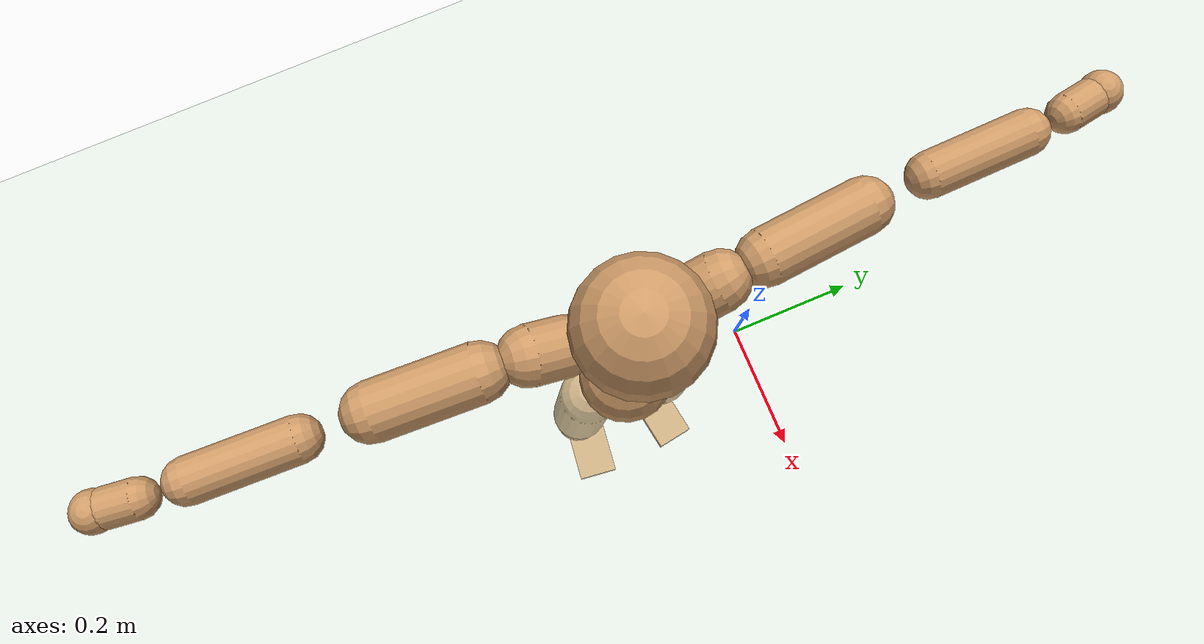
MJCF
<mujoco model="humanoid">
  <compiler coordinate="local"/>
  <default>
    <joint damping="0.0" armature="0.01" stiffness="0.0" limited="true"/>
    <geom conaffinity="1" condim="3" contype="7" margin="0.001" rgba="0.8 0.6 .4 1"/>
  </default>
  <asset>
    <texture type="skybox" builtin="gradient" rgb1=".4 .5 .6" rgb2="0 0 0" width="100" height="100"/>
    <texture builtin="flat" height="1278" mark="cross" markrgb="1 1 1" name="texgeom" random="0.01" rgb1="0.8 0.6 0.4" rgb2="0.8 0.6 0.4" type="cube" width="127"/>
    <texture builtin="checker" height="100" name="texplane" rgb1="0 0 0" rgb2="0.8 0.8 0.8" type="2d" width="100"/>
    <material name="MatPlane" reflectance="0.5" shininess="1" specular="1" texrepeat="60 60" texture="texplane"/>
    <material name="geom" texture="texgeom" texuniform="true"/>
  </asset>
  <worldbody>
    <light cutoff="100" diffuse="1 1 1" dir="-0 0 -1.3" directional="true" exponent="1" pos="0 0 1.3" specular=".1 .1 .1"/>
    <geom conaffinity="1" condim="3" name="floor" pos="0 0 0" rgba="0.8 0.9 0.8 1" size="100 100 .2" type="plane" material="MatPlane"/>
    <body name="Pelvis" pos="-0.0023 -0.1964 0.013">
      <freejoint name="Pelvis"/>
      <geom type="sphere" contype="1" conaffinity="1" density="500" size="0.0773" pos="0.0000 0.0000 0.0000" name="Pelvis"/>
      <body name="L_Hip" pos="-0.0163 0.0594 -0.0849">
        <joint name="L_Hip_x" type="hinge" pos="0 0 0" axis="1 0 0" stiffness="800" damping="80" armature="0.02" range="-180.0000 180.0000"/>
        <joint name="L_Hip_y" type="hinge" pos="0 0 0" axis="0 1 0" stiffness="800" damping="80" armature="0.02" range="-180.0000 180.0000"/>
        <joint name="L_Hip_z" type="hinge" pos="0 0 0" axis="0 0 1" stiffness="800" damping="80" armature="0.02" range="-180.0000 180.0000"/>
        <geom type="capsule" contype="1" conaffinity="1" density="500" fromto="0.0005 0.0072 -0.0738 0.0019 0.0289 -0.2953" size="0.052" name="L_Hip"/>
        <body name="L_Knee" pos="0.0024 0.0361 -0.3692">
          <joint name="L_Knee_x" type="hinge" pos="0 0 0" axis="1 0 0" stiffness="800" damping="80" armature="0.02" range="-180.0000 180.0000"/>
          <joint name="L_Knee_y" type="hinge" pos="0 0 0" axis="0 1 0" stiffness="800" damping="80" armature="0.02" range="-180.0000 180.0000"/>
          <joint name="L_Knee_z" type="hinge" pos="0 0 0" axis="0 0 1" stiffness="800" damping="80" armature="0.02" range="-180.0000 180.0000"/>
          <geom type="capsule" contype="1" conaffinity="1" density="500" fromto="-0.0076 -0.0025 -0.0771 -0.0303 -0.0101 -0.3086" size="0.0463" name="L_Knee"/>
          <body name="L_Ankle" pos="-0.0378 -0.0126 -0.3857">
            <joint name="L_Ankle_x" type="hinge" pos="0 0 0" axis="1 0 0" stiffness="800" damping="80" armature="0.02" range="-180.0000 180.0000"/>
            <joint name="L_Ankle_y" type="hinge" pos="0 0 0" axis="0 1 0" stiffness="800" damping="80" armature="0.02" range="-180.0000 180.0000"/>
            <joint name="L_Ankle_z" type="hinge" pos="0 0 0" axis="0 0 1" stiffness="800" damping="80" armature="0.02" range="-180.0000 180.0000"/>
            <geom type="box" contype="1" conaffinity="1" density="500" pos="0.0560 0.0086 -0.0265" size="0.0787 0.04 0.0191" quat="0.9971 0.0000 0.0000 0.0763" name="L_Ankle"/>
            <body name="L_Toe" pos="0.1119 0.0172 -0.0529">
              <joint name="L_Toe_x" type="hinge" pos="0 0 0" axis="1 0 0" stiffness="500" damping="50" armature="0.02" range="-180.0000 180.0000"/>
              <joint name="L_Toe_y" type="hinge" pos="0 0 0" axis="0 1 0" stiffness="500" damping="50" armature="0.02" range="-180.0000 180.0000"/>
              <joint name="L_Toe_z" type="hinge" pos="0 0 0" axis="0 0 1" stiffness="500" damping="50" armature="0.02" range="-180.0000 180.0000"/>
              <geom type="box" contype="1" conaffinity="1" density="500" pos="0.0000 0.0000 0.0260" size="0.0008 0.002 0.0009" quat="0.9965 0.0000 0.0000 0.0835" name="L_Toe"/>
            </body>
          </body>
        </body>
      </body>
      <body name="R_Hip" pos="-0.0122 -0.0576 -0.0837">
        <joint name="R_Hip_x" type="hinge" pos="0 0 0" axis="1 0 0" stiffness="800" damping="80" armature="0.02" range="-180.0000 180.0000"/>
        <joint name="R_Hip_y" type="hinge" pos="0 0 0" axis="0 1 0" stiffness="800" damping="80" armature="0.02" range="-180.0000 180.0000"/>
        <joint name="R_Hip_z" type="hinge" pos="0 0 0" axis="0 0 1" stiffness="800" damping="80" armature="0.02" range="-180.0000 180.0000"/>
        <geom type="capsule" contype="1" conaffinity="1" density="500" fromto="-0.0001 -0.0081 -0.0754 -0.0005 -0.0323 -0.3017" size="0.0512" name="R_Hip"/>
        <body name="R_Knee" pos="-0.0006 -0.0404 -0.3771">
          <joint name="R_Knee_x" type="hinge" pos="0 0 0" axis="1 0 0" stiffness="800" damping="80" armature="0.02" range="-180.0000 180.0000"/>
          <joint name="R_Knee_y" type="hinge" pos="0 0 0" axis="0 1 0" stiffness="800" damping="80" armature="0.02" range="-180.0000 180.0000"/>
          <joint name="R_Knee_z" type="hinge" pos="0 0 0" axis="0 0 1" stiffness="800" damping="80" armature="0.02" range="-180.0000 180.0000"/>
          <geom type="capsule" contype="1" conaffinity="1" density="500" fromto="-0.0069 0.0032 -0.0769 -0.0278 0.0127 -0.3076" size="0.0467" name="R_Knee"/>
          <body name="R_Ankle" pos="-0.0347 0.0159 -0.3845">
            <joint name="R_Ankle_x" type="hinge" pos="0 0 0" axis="1 0 0" stiffness="800" damping="80" armature="0.02" range="-180.0000 180.0000"/>
            <joint name="R_Ankle_y" type="hinge" pos="0 0 0" axis="0 1 0" stiffness="800" damping="80" armature="0.02" range="-180.0000 180.0000"/>
            <joint name="R_Ankle_z" type="hinge" pos="0 0 0" axis="0 0 1" stiffness="800" damping="80" armature="0.02" range="-180.0000 180.0000"/>
            <geom type="box" contype="1" conaffinity="1" density="500" pos="0.0572 -0.0072 -0.0226" size="0.0805 0.0425 0.0183" quat="0.9981 0.0000 0.0000 -0.0622" name="R_Ankle"/>
            <body name="R_Toe" pos="0.1144 -0.0143 -0.0453">
              <joint name="R_Toe_x" type="hinge" pos="0 0 0" axis="1 0 0" stiffness="500" damping="50" armature="0.02" range="-180.0000 180.0000"/>
              <joint name="R_Toe_y" type="hinge" pos="0 0 0" axis="0 1 0" stiffness="500" damping="50" armature="0.02" range="-180.0000 180.0000"/>
              <joint name="R_Toe_z" type="hinge" pos="0 0 0" axis="0 0 1" stiffness="500" damping="50" armature="0.02" range="-180.0000 180.0000"/>
              <geom type="box" contype="1" conaffinity="1" density="500" pos="0.0000 0.0000 0.0244" size="0.0008 0.0021 0.001" quat="0.9986 0.0000 0.0000 -0.0527" name="R_Toe"/>
            </body>
          </body>
        </body>
      </body>
      <body name="Torso" pos="-0.0095 -0.0024 0.0968">
        <joint name="Torso_x" type="hinge" pos="0 0 0" axis="1 0 0" stiffness="1000" damping="100" armature="0.02" range="-180.0000 180.0000"/>
        <joint name="Torso_y" type="hinge" pos="0 0 0" axis="0 1 0" stiffness="1000" damping="100" armature="0.02" range="-180.0000 180.0000"/>
        <joint name="Torso_z" type="hinge" pos="0 0 0" axis="0 0 1" stiffness="1000" damping="100" armature="0.02" range="-180.0000 180.0000"/>
        <geom type="capsule" contype="1" conaffinity="1" density="500" fromto="0.0024 0.0023 0.0790 0.0016 0.0015 0.0527" size="0.051987" name="Torso"/>
        <body name="Spine" pos="0.0041 0.0039 0.1317">
          <joint name="Spine_x" type="hinge" pos="0 0 0" axis="1 0 0" stiffness="1000" damping="100" armature="0.02" range="-180.0000 180.0000"/>
          <joint name="Spine_y" type="hinge" pos="0 0 0" axis="0 1 0" stiffness="1000" damping="100" armature="0.02" range="-180.0000 180.0000"/>
          <joint name="Spine_z" type="hinge" pos="0 0 0" axis="0 0 1" stiffness="1000" damping="100" armature="0.02" range="-180.0000 180.0000"/>
          <geom type="capsule" contype="1" conaffinity="1" density="500" fromto="0.0125 0.0017 0.0276 0.0083 0.0011 0.0184" size="0.053196" name="Spine"/>
          <body name="Chest" pos="0.0208 0.0029 0.0461">
            <joint name="Chest_x" type="hinge" pos="0 0 0" axis="1 0 0" stiffness="1000" damping="100" armature="0.02" range="-180.0000 180.0000"/>
            <joint name="Chest_y" type="hinge" pos="0 0 0" axis="0 1 0" stiffness="1000" damping="100" armature="0.02" range="-180.0000 180.0000"/>
            <joint name="Chest_z" type="hinge" pos="0 0 0" axis="0 0 1" stiffness="1000" damping="100" armature="0.02" range="-180.0000 180.0000"/>
            <geom type="capsule" contype="1" conaffinity="1" density="500" fromto="-0.0215 -0.0011 0.0804 -0.0143 -0.0007 0.0536" size="0.073377" name="Chest"/>
            <body name="Neck" pos="-0.0432 -0.0033 0.1897">
              <joint name="Neck_x" type="hinge" pos="0 0 0" axis="1 0 0" stiffness="500" damping="50" armature="0.02" range="-180.0000 180.0000"/>
              <joint name="Neck_y" type="hinge" pos="0 0 0" axis="0 1 0" stiffness="500" damping="50" armature="0.02" range="-180.0000 180.0000"/>
              <joint name="Neck_z" type="hinge" pos="0 0 0" axis="0 0 1" stiffness="500" damping="50" armature="0.02" range="-180.0000 180.0000"/>
              <geom type="capsule" contype="1" conaffinity="1" density="500" fromto="0.0090 0.0012 0.0120 0.0360 0.0048 0.0480" size="0.034038" name="Neck"/>
              <body name="Head" pos="0.045 0.006 0.06">
                <joint name="Head_x" type="hinge" pos="0 0 0" axis="1 0 0" stiffness="500" damping="50" armature="0.02" range="-180.0000 180.0000"/>
                <joint name="Head_y" type="hinge" pos="0 0 0" axis="0 1 0" stiffness="500" damping="50" armature="0.02" range="-180.0000 180.0000"/>
                <joint name="Head_z" type="hinge" pos="0 0 0" axis="0 0 1" stiffness="500" damping="50" armature="0.02" range="-180.0000 180.0000"/>
                <geom type="sphere" contype="1" conaffinity="1" density="500" size="0.0895" pos="0.0000 0.0000 0.0000" name="Head"/>
              </body>
            </body>
            <body name="L_Thorax" pos="-0.0303 0.0675 0.1073">
              <joint name="L_Thorax_x" type="hinge" pos="0 0 0" axis="1 0 0" stiffness="500" damping="50" armature="0.02" range="-180.0000 180.0000"/>
              <joint name="L_Thorax_y" type="hinge" pos="0 0 0" axis="0 1 0" stiffness="500" damping="50" armature="0.02" range="-180.0000 180.0000"/>
              <joint name="L_Thorax_z" type="hinge" pos="0 0 0" axis="0 0 1" stiffness="500" damping="50" armature="0.02" range="-180.0000 180.0000"/>
              <geom type="capsule" contype="1" conaffinity="1" density="500" fromto="-0.0006 0.0157 0.0061 -0.0022 0.0628 0.0245" size="0.0427" name="L_Thorax"/>
              <body name="L_Shoulder" pos="-0.0028 0.0785 0.0306">
                <joint name="L_Shoulder_x" type="hinge" pos="0 0 0" axis="1 0 0" stiffness="500" damping="50" armature="0.02" range="-720.0000 720.0000"/>
                <joint name="L_Shoulder_y" type="hinge" pos="0 0 0" axis="0 1 0" stiffness="500" damping="50" armature="0.02" range="-720.0000 720.0000"/>
                <joint name="L_Shoulder_z" type="hinge" pos="0 0 0" axis="0 0 1" stiffness="500" damping="50" armature="0.02" range="-720.0000 720.0000"/>
                <geom type="capsule" contype="1" conaffinity="1" density="500" fromto="-0.0046 0.0500 -0.0027 -0.0183 0.1999 -0.0107" size="0.04" name="L_Shoulder"/>
                <body name="L_Elbow" pos="-0.0228 0.2499 -0.0134">
                  <joint name="L_Elbow_x" type="hinge" pos="0 0 0" axis="1 0 0" stiffness="500" damping="50" armature="0.02" range="-720.0000 720.0000"/>
                  <joint name="L_Elbow_y" type="hinge" pos="0 0 0" axis="0 1 0" stiffness="500" damping="50" armature="0.02" range="-720.0000 720.0000"/>
                  <joint name="L_Elbow_z" type="hinge" pos="0 0 0" axis="0 0 1" stiffness="500" damping="50" armature="0.02" range="-720.0000 720.0000"/>
                  <geom type="capsule" contype="1" conaffinity="1" density="500" fromto="-0.0005 0.0471 0.0017 -0.0021 0.1883 0.0066" size="0.0325" name="L_Elbow"/>
                  <body name="L_Wrist" pos="-0.0026 0.2353 0.0083">
                    <joint name="L_Wrist_x" type="hinge" pos="0 0 0" axis="1 0 0" stiffness="300" damping="30" armature="0.02" range="-180.0000 180.0000"/>
                    <joint name="L_Wrist_y" type="hinge" pos="0 0 0" axis="0 1 0" stiffness="300" damping="30" armature="0.02" range="-180.0000 180.0000"/>
                    <joint name="L_Wrist_z" type="hinge" pos="0 0 0" axis="0 0 1" stiffness="300" damping="30" armature="0.02" range="-180.0000 180.0000"/>
                    <geom type="capsule" contype="1" conaffinity="1" density="500" fromto="-0.0025 0.0148 -0.0018 -0.0101 0.0591 -0.0074" size="0.0273" name="L_Wrist"/>
                    <body name="L_Hand" pos="-0.0126 0.0739 -0.0092">
                      <joint name="L_Hand_x" type="hinge" pos="0 0 0" axis="1 0 0" stiffness="300" damping="30" armature="0.02" range="-180.0000 180.0000"/>
                      <joint name="L_Hand_y" type="hinge" pos="0 0 0" axis="0 1 0" stiffness="300" damping="30" armature="0.02" range="-180.0000 180.0000"/>
                      <joint name="L_Hand_z" type="hinge" pos="0 0 0" axis="0 0 1" stiffness="300" damping="30" armature="0.02" range="-180.0000 180.0000"/>
                      <geom type="sphere" contype="1" conaffinity="1" density="500" size="0.0297" pos="0.0000 0.0000 0.0000" name="L_Hand"/>
                    </body>
                  </body>
                </body>
              </body>
            </body>
            <body name="R_Thorax" pos="-0.0338 -0.0695 0.1051">
              <joint name="R_Thorax_x" type="hinge" pos="0 0 0" axis="1 0 0" stiffness="500" damping="50" armature="0.02" range="-180.0000 180.0000"/>
              <joint name="R_Thorax_y" type="hinge" pos="0 0 0" axis="0 1 0" stiffness="500" damping="50" armature="0.02" range="-180.0000 180.0000"/>
              <joint name="R_Thorax_z" type="hinge" pos="0 0 0" axis="0 0 1" stiffness="500" damping="50" armature="0.02" range="-180.0000 180.0000"/>
              <geom type="capsule" contype="1" conaffinity="1" density="500" fromto="-0.0014 -0.0165 0.0064 -0.0055 -0.0661 0.0256" size="0.0417" name="R_Thorax"/>
              <body name="R_Shoulder" pos="-0.0068 -0.0826 0.032">
                <joint name="R_Shoulder_x" type="hinge" pos="0 0 0" axis="1 0 0" stiffness="500" damping="50" armature="0.02" range="-720.0000 720.0000"/>
                <joint name="R_Shoulder_y" type="hinge" pos="0 0 0" axis="0 1 0" stiffness="500" damping="50" armature="0.02" range="-720.0000 720.0000"/>
                <joint name="R_Shoulder_z" type="hinge" pos="0 0 0" axis="0 0 1" stiffness="500" damping="50" armature="0.02" range="-720.0000 720.0000"/>
                <geom type="capsule" contype="1" conaffinity="1" density="500" fromto="-0.0026 -0.0484 -0.0027 -0.0106 -0.1936 -0.0107" size="0.0417" name="R_Shoulder"/>
                <body name="R_Elbow" pos="-0.0132 -0.242 -0.0133">
                  <joint name="R_Elbow_x" type="hinge" pos="0 0 0" axis="1 0 0" stiffness="500" damping="50" armature="0.02" range="-720.0000 720.0000"/>
                  <joint name="R_Elbow_y" type="hinge" pos="0 0 0" axis="0 1 0" stiffness="500" damping="50" armature="0.02" range="-720.0000 720.0000"/>
                  <joint name="R_Elbow_z" type="hinge" pos="0 0 0" axis="0 0 1" stiffness="500" damping="50" armature="0.02" range="-720.0000 720.0000"/>
                  <geom type="capsule" contype="1" conaffinity="1" density="500" fromto="-0.0016 -0.0487 0.0011 -0.0065 -0.1947 0.0046" size="0.0326" name="R_Elbow"/>
                  <body name="R_Wrist" pos="-0.0081 -0.2433 0.0057">
                    <joint name="R_Wrist_x" type="hinge" pos="0 0 0" axis="1 0 0" stiffness="300" damping="30" armature="0.02" range="-180.0000 180.0000"/>
                    <joint name="R_Wrist_y" type="hinge" pos="0 0 0" axis="0 1 0" stiffness="300" damping="30" armature="0.02" range="-180.0000 180.0000"/>
                    <joint name="R_Wrist_z" type="hinge" pos="0 0 0" axis="0 0 1" stiffness="300" damping="30" armature="0.02" range="-180.0000 180.0000"/>
                    <geom type="capsule" contype="1" conaffinity="1" density="500" fromto="-0.0019 -0.0150 -0.0013 -0.0077 -0.0598 -0.0054" size="0.028" name="R_Wrist"/>
                    <body name="R_Hand" pos="-0.0096 -0.0748 -0.0067">
                      <joint name="R_Hand_x" type="hinge" pos="0 0 0" axis="1 0 0" stiffness="300" damping="30" armature="0.02" range="-180.0000 180.0000"/>
                      <joint name="R_Hand_y" type="hinge" pos="0 0 0" axis="0 1 0" stiffness="300" damping="30" armature="0.02" range="-180.0000 180.0000"/>
                      <joint name="R_Hand_z" type="hinge" pos="0 0 0" axis="0 0 1" stiffness="300" damping="30" armature="0.02" range="-180.0000 180.0000"/>
                      <geom type="sphere" contype="1" conaffinity="1" density="500" size="0.0299" pos="0.0000 0.0000 0.0000" name="R_Hand"/>
                    </body>
                  </body>
                </body>
              </body>
            </body>
          </body>
        </body>
      </body>
    </body>
  </worldbody>
  <actuator>
    <motor name="L_Hip_x" joint="L_Hip_x" gear="500"/>
    <motor name="L_Hip_y" joint="L_Hip_y" gear="500"/>
    <motor name="L_Hip_z" joint="L_Hip_z" gear="500"/>
    <motor name="L_Knee_x" joint="L_Knee_x" gear="500"/>
    <motor name="L_Knee_y" joint="L_Knee_y" gear="500"/>
    <motor name="L_Knee_z" joint="L_Knee_z" gear="500"/>
    <motor name="L_Ankle_x" joint="L_Ankle_x" gear="500"/>
    <motor name="L_Ankle_y" joint="L_Ankle_y" gear="500"/>
    <motor name="L_Ankle_z" joint="L_Ankle_z" gear="500"/>
    <motor name="L_Toe_x" joint="L_Toe_x" gear="500"/>
    <motor name="L_Toe_y" joint="L_Toe_y" gear="500"/>
    <motor name="L_Toe_z" joint="L_Toe_z" gear="500"/>
    <motor name="R_Hip_x" joint="R_Hip_x" gear="500"/>
    <motor name="R_Hip_y" joint="R_Hip_y" gear="500"/>
    <motor name="R_Hip_z" joint="R_Hip_z" gear="500"/>
    <motor name="R_Knee_x" joint="R_Knee_x" gear="500"/>
    <motor name="R_Knee_y" joint="R_Knee_y" gear="500"/>
    <motor name="R_Knee_z" joint="R_Knee_z" gear="500"/>
    <motor name="R_Ankle_x" joint="R_Ankle_x" gear="500"/>
    <motor name="R_Ankle_y" joint="R_Ankle_y" gear="500"/>
    <motor name="R_Ankle_z" joint="R_Ankle_z" gear="500"/>
    <motor name="R_Toe_x" joint="R_Toe_x" gear="500"/>
    <motor name="R_Toe_y" joint="R_Toe_y" gear="500"/>
    <motor name="R_Toe_z" joint="R_Toe_z" gear="500"/>
    <motor name="Torso_x" joint="Torso_x" gear="500"/>
    <motor name="Torso_y" joint="Torso_y" gear="500"/>
    <motor name="Torso_z" joint="Torso_z" gear="500"/>
    <motor name="Spine_x" joint="Spine_x" gear="500"/>
    <motor name="Spine_y" joint="Spine_y" gear="500"/>
    <motor name="Spine_z" joint="Spine_z" gear="500"/>
    <motor name="Chest_x" joint="Chest_x" gear="500"/>
    <motor name="Chest_y" joint="Chest_y" gear="500"/>
    <motor name="Chest_z" joint="Chest_z" gear="500"/>
    <motor name="Neck_x" joint="Neck_x" gear="500"/>
    <motor name="Neck_y" joint="Neck_y" gear="500"/>
    <motor name="Neck_z" joint="Neck_z" gear="500"/>
    <motor name="Head_x" joint="Head_x" gear="500"/>
    <motor name="Head_y" joint="Head_y" gear="500"/>
    <motor name="Head_z" joint="Head_z" gear="500"/>
    <motor name="L_Thorax_x" joint="L_Thorax_x" gear="500"/>
    <motor name="L_Thorax_y" joint="L_Thorax_y" gear="500"/>
    <motor name="L_Thorax_z" joint="L_Thorax_z" gear="500"/>
    <motor name="L_Shoulder_x" joint="L_Shoulder_x" gear="500"/>
    <motor name="L_Shoulder_y" joint="L_Shoulder_y" gear="500"/>
    <motor name="L_Shoulder_z" joint="L_Shoulder_z" gear="500"/>
    <motor name="L_Elbow_x" joint="L_Elbow_x" gear="500"/>
    <motor name="L_Elbow_y" joint="L_Elbow_y" gear="500"/>
    <motor name="L_Elbow_z" joint="L_Elbow_z" gear="500"/>
    <motor name="L_Wrist_x" joint="L_Wrist_x" gear="500"/>
    <motor name="L_Wrist_y" joint="L_Wrist_y" gear="500"/>
    <motor name="L_Wrist_z" joint="L_Wrist_z" gear="500"/>
    <motor name="L_Hand_x" joint="L_Hand_x" gear="500"/>
    <motor name="L_Hand_y" joint="L_Hand_y" gear="500"/>
    <motor name="L_Hand_z" joint="L_Hand_z" gear="500"/>
    <motor name="R_Thorax_x" joint="R_Thorax_x" gear="500"/>
    <motor name="R_Thorax_y" joint="R_Thorax_y" gear="500"/>
    <motor name="R_Thorax_z" joint="R_Thorax_z" gear="500"/>
    <motor name="R_Shoulder_x" joint="R_Shoulder_x" gear="500"/>
    <motor name="R_Shoulder_y" joint="R_Shoulder_y" gear="500"/>
    <motor name="R_Shoulder_z" joint="R_Shoulder_z" gear="500"/>
    <motor name="R_Elbow_x" joint="R_Elbow_x" gear="500"/>
    <motor name="R_Elbow_y" joint="R_Elbow_y" gear="500"/>
    <motor name="R_Elbow_z" joint="R_Elbow_z" gear="500"/>
    <motor name="R_Wrist_x" joint="R_Wrist_x" gear="500"/>
    <motor name="R_Wrist_y" joint="R_Wrist_y" gear="500"/>
    <motor name="R_Wrist_z" joint="R_Wrist_z" gear="500"/>
    <motor name="R_Hand_x" joint="R_Hand_x" gear="500"/>
    <motor name="R_Hand_y" joint="R_Hand_y" gear="500"/>
    <motor name="R_Hand_z" joint="R_Hand_z" gear="500"/>
  </actuator>
  <contact>
    <exclude body1="Torso" body2="Chest"/>
    <exclude body1="Head" body2="Chest"/>
    <exclude body1="R_Knee" body2="R_Toe"/>
    <exclude body1="R_Knee" body2="L_Ankle"/>
    <exclude body1="R_Knee" body2="L_Toe"/>
    <exclude body1="L_Knee" body2="L_Toe"/>
    <exclude body1="L_Knee" body2="R_Ankle"/>
    <exclude body1="L_Knee" body2="R_Toe"/>
    <exclude body1="L_Shoulder" body2="Chest"/>
    <exclude body1="R_Shoulder" body2="Chest"/>
  </contact>
  <sensor/>
  <size njmax="700" nconmax="700"/>
</mujoco>
